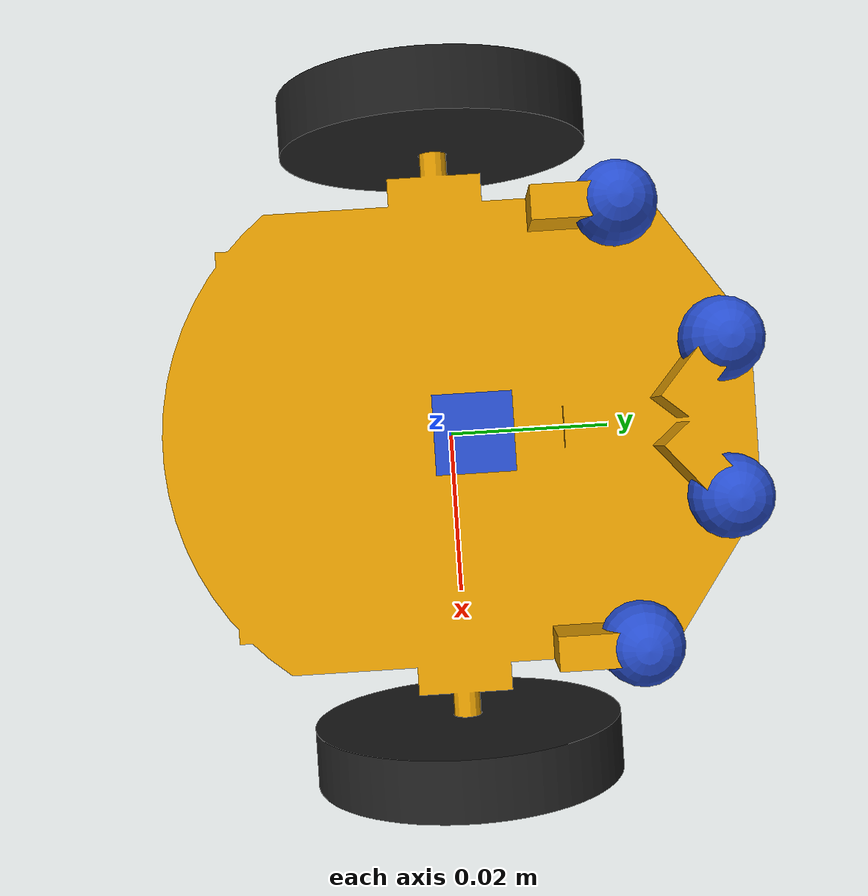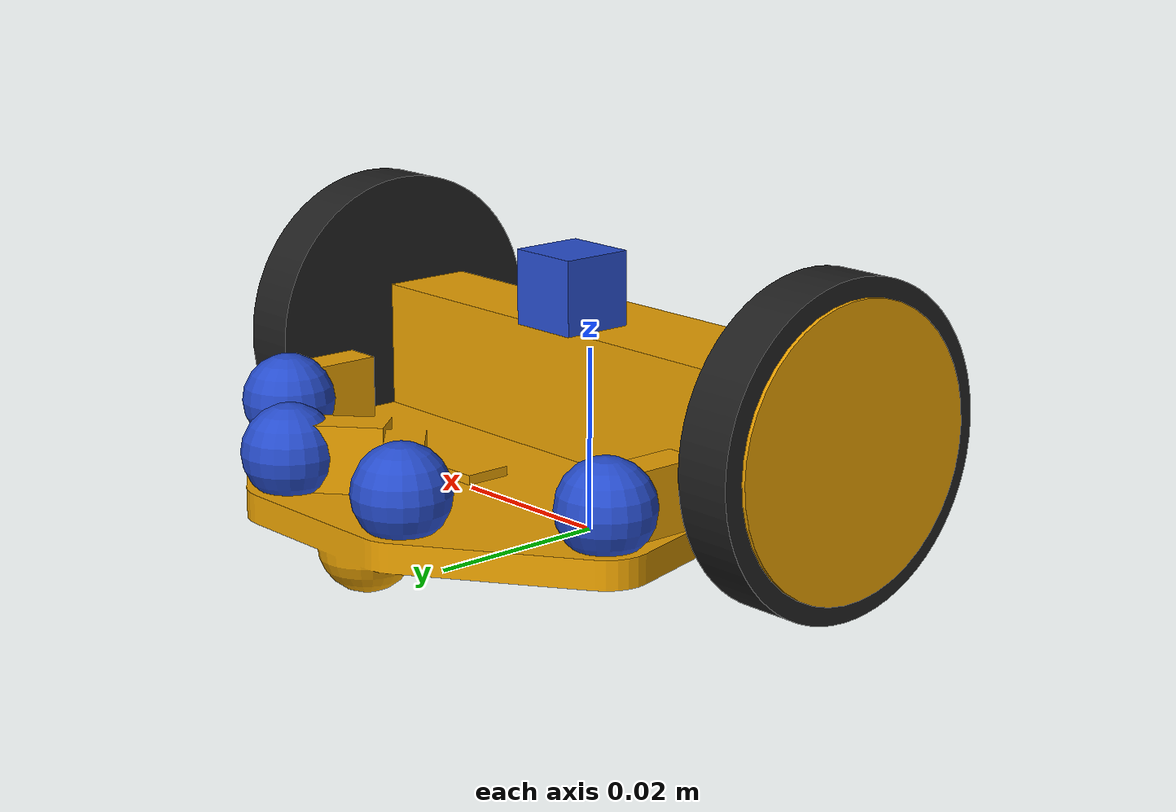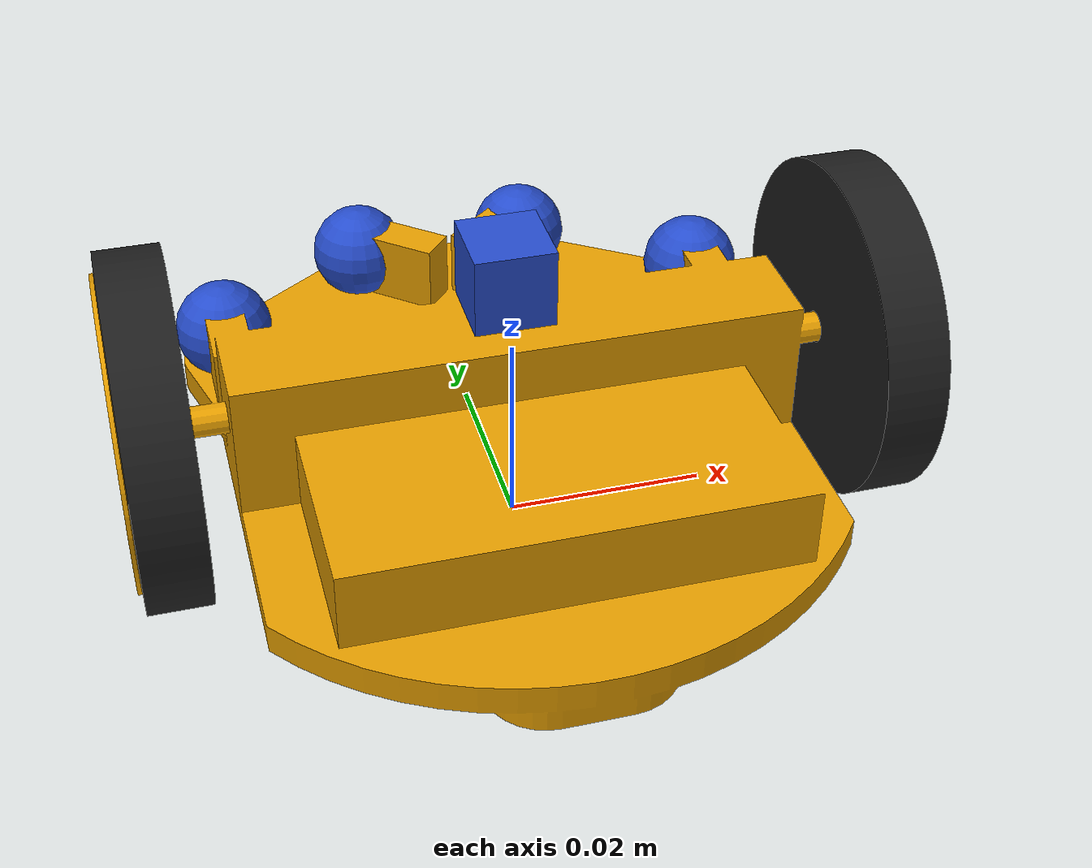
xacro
<?xml version="1.0" ?>
<robot name="mouse" xmlns:xacro="http://www.ros.org/wiki/xacro">
	<xacro:property name="wheel_sep" value="0.069"/>
	<xacro:property name="wheel_dia" value="0.034"/>
	<xacro:property name="wheel_torque" value="0.015"/>
	<xacro:property name="wheel_veloc" value="105"/>

	<link name="base_link">
		<visual>
			<geometry>
				<mesh filename="package://mouse_description/meshes/mouse_base.dae" scale="1 1 1"/>
			</geometry>
		</visual>

		<collision name="base_link_collision">
			<geometry>
				<mesh filename="package://mouse_description/meshes/mouse_base.dae" scale="1 1 1"/>
			</geometry>
		</collision>

		<inertial>
			<origin xyz="0 -0.004502 0.011265" rpy="0 0 0"/>
			<mass value="0.077"/>
			<inertia
        		ixx="1.956e-5" ixy="3.869e-18" ixz="0.0"
        		iyy="1.775e-5" iyz="2.795e-7"
        		izz="3.367e-5"/>
		</inertial>

		<gazebo reference="base_link">
			<mu1>0.1</mu1>
			<mu2>0.1</mu2>
			<kp>1000000.0</kp>
			<kd>100.0</kd>
			<minDepth>0.0001</minDepth>
			<maxVel>1.0</maxVel>
		</gazebo>
	</link>

	<!-- Actuation -->
	<link name="left_wheel">
		<visual>
			<geometry>
				<mesh filename="package://mouse_description/meshes/mouse_wheel.dae" scale="1 1 1"/>
			</geometry>
		</visual>

		<collision name="left_wheel_collision">
			<geometry>
				<mesh filename="package://mouse_description/meshes/mouse_wheel.dae" scale="1 1 1"/>
			</geometry>
		</collision>

		<inertial>
			<mass value="0.015"/>
			<inertia
        		ixx="2.196e-6" ixy="0.0" ixz="0.0"
        		iyy="1.146e-6" iyz="0.0"
        		izz="1.146e-6"/>
		</inertial>
	</link>

	<link name="right_wheel">
		<visual>
			<geometry>
				<mesh filename="package://mouse_description/meshes/mouse_wheel.dae" scale="1 1 1"/>
			</geometry>
		</visual>

		<collision name="right_wheel_collision">
			<geometry>
				<mesh filename="package://mouse_description/meshes/mouse_wheel.dae" scale="1 1 1"/>
			</geometry>
		</collision>

		<inertial>
			<mass value="0.015"/>
			<inertia
        		ixx="2.196e-6" ixy="0.0" ixz="0.0"
        		iyy="1.146e-6" iyz="0.0"
        		izz="1.146e-6"/>
		</inertial>
	</link>

	<joint name="left_mot" type="continuous">
		<parent link="base_link"/>
		<child link="left_wheel"/>
		<origin xyz="${wheel_sep/2} 0 ${wheel_dia/2}" rpy="0 0 0"/>
		<axis xyz="-1 0 0"/>
		<dynamics friction="0.01"/>
		<limit effort="${wheel_torque}" velocity="${wheel_veloc}"/>
	</joint>

	<joint name="right_mot" type="continuous">
		<parent link="base_link"/>
		<child link="right_wheel"/>
		<origin xyz="${-wheel_sep/2} 0 ${wheel_dia/2}" rpy="0 0 0"/>
		<axis xyz="-1 0 0"/>
		<dynamics friction="0.01"/>
		<limit effort="${wheel_torque}" velocity="${wheel_veloc}"/>
	</joint>

	<gazebo reference="left_wheel">
		<mu1>1.0</mu1>
		<mu2>1.0</mu2>
		<kp>1000000.0</kp>
		<kd>100.0</kd>
		<minDepth>0.0001</minDepth>
		<maxVel>1.0</maxVel>
		<material>Gazebo/Black</material>
	</gazebo>

	<gazebo reference="right_wheel">
		<mu1>1.0</mu1>
		<mu2>1.0</mu2>
		<kp>1000000.0</kp>
		<kd>100.0</kd>
		<minDepth>0.0001</minDepth>
		<maxVel>1.0</maxVel>
		<material>Gazebo/Black</material>
	</gazebo>

	<!-- Gazebo Actuation -->
	<gazebo>
		<plugin name="differential_drive_controller" filename="libgazebo_ros_diff_drive.so">
			<rosDebugLevel>0</rosDebugLevel>
			<alwaysOn>true</alwaysOn>
			<updateRate>120</updateRate>

			<leftJoint>right_mot</leftJoint>
			<rightJoint>left_mot</rightJoint>

			<wheelAcceleration>0</wheelAcceleration>
			<wheelSeparation>${wheel_sep}</wheelSeparation>
			<wheelDiameter>${wheel_dia}</wheelDiameter>
			<wheelTorque>${wheel_torque}</wheelTorque>

			<commandTopic>cmd_vel</commandTopic>
			<odometryTopic>odom</odometryTopic>

			<!-- world == perfect positioning -->
			<odometrySource>world</odometrySource>

			<odometryFrame>map</odometryFrame>
			<robotBaseFrame>base</robotBaseFrame>

			<publishTf>1</publishTf>
			<publishWheelTF>false</publishWheelTF>
			<publishOdomTF>true</publishOdomTF>
			<publishWheelJointState>false</publishWheelJointState>
		</plugin>
	</gazebo>

	<!-- Sensors -->

	<!-- Color Sensor (Camera) -->
	<link name="front_cam">
		<visual>
			<geometry>
				<box size="0.008 0.008 0.008"/>
			</geometry>
		</visual>

		<collision name="front_cam_collision">
			<geometry>
				<box size="0.008 0.008 0.008"/>
			</geometry>
		</collision>

		<inertial>
			<mass value="1e-5"/>
			<inertia
        		ixx="1e-6" ixy="0.0" ixz="0.0"
        		iyy="1e-6" iyz="0.0"
        		izz="1e-6"/>
		</inertial>
	</link>

	<joint name="front_cam_mnt" type="fixed">
		<origin xyz="0 0.0025 0.027" rpy="0 0 1.57079632679"/>
		<parent link="base_link"/>
		<child link="front_cam"/>
	</joint>

	<gazebo reference="front_cam">
		<material>Gazebo/Blue</material>

		<sensor name="front_cam" type="camera">
			<update_rate>30</update_rate>
			<camera name="front_cam">
				<horizontal_fov>2.65</horizontal_fov>
				<image>
					<width>640</width>
					<height>360</height>
					<format>R8G8B8</format>
				</image>
				<clip>
					<near>0.001</near>
					<far>0.25</far>
				</clip>
			</camera>
			<plugin name="gazebo_ros_camera" filename="libgazebo_ros_camera.so">
				<imageTopicName>image_raw</imageTopicName>
				<cameraInfoTopicName>camera_info</cameraInfoTopicName>
				<!-- incorrect TF frame -->
				<frameName>base</frameName>
			</plugin>
		</sensor>
	</gazebo>

	<!-- Bumper sensor -->
	<link name="left_bump">
		<visual>
			<geometry>
				<sphere radius="0.005"/>
			</geometry>
		</visual>

		<collision name="left_bump_collision">
			<geometry>
				<sphere radius="0.005"/>
			</geometry>
		</collision>

		<inertial>
			<mass value="1e-5"/>
			<inertia
        		ixx="1e-6" ixy="0.0" ixz="0.0"
        		iyy="1e-6" iyz="0.0"
        		izz="1e-6"/>
		</inertial>
	</link>

	<link name="right_bump">
		<visual>
			<geometry>
				<sphere radius="0.005"/>
			</geometry>
		</visual>

		<collision name="right_bump_collision">
			<geometry>
				<sphere radius="0.005"/>
			</geometry>
		</collision>

		<inertial>
			<mass value="1e-5"/>
			<inertia
        		ixx="1e-6" ixy="0.0" ixz="0.0"
        		iyy="1e-6" iyz="0.0"
        		izz="1e-6"/>
		</inertial>
	</link>

	<link name="left_front_bump">
		<visual>
			<geometry>
				<sphere radius="0.005"/>
			</geometry>
		</visual>

		<collision name="left_front_bump_collision">
			<geometry>
				<sphere radius="0.005"/>
			</geometry>
		</collision>

		<inertial>
			<mass value="1e-5"/>
			<inertia
        		ixx="1e-6" ixy="0.0" ixz="0.0"
        		iyy="1e-6" iyz="0.0"
        		izz="1e-6"/>
		</inertial>
	</link>

	<link name="right_front_bump">
		<visual>
			<geometry>
				<sphere radius="0.005"/>
			</geometry>
		</visual>

		<collision name="right_front_bump_collision">
			<geometry>
				<sphere radius="0.005"/>
			</geometry>
		</collision>

		<inertial>
			<mass value="1e-5"/>
			<inertia
        		ixx="1e-6" ixy="0.0" ixz="0.0"
        		iyy="1e-6" iyz="0.0"
        		izz="1e-6"/>
		</inertial>
	</link>

	<joint name="left_bump_mnt" type="fixed">
		<origin xyz="-0.0256 0.0207 0.013" rpy="0 0 0"/>
		<parent link="base_link"/>
		<child link="left_bump"/>
	</joint>

	<joint name="right_bump_mnt" type="fixed">
		<origin xyz="0.0256 0.0207 0.013" rpy="0 0 0"/>
		<parent link="base_link"/>
		<child link="right_bump"/>
	</joint>

	<joint name="left_front_bump_mnt" type="fixed">
		<origin xyz="-0.009152 0.032074 0.013" rpy="0 0 0"/>
		<parent link="base_link"/>
		<child link="left_front_bump"/>
	</joint>

	<joint name="right_front_bump_mnt" type="fixed">
		<origin xyz="0.009152 0.032074 0.013" rpy="0 0 0"/>
		<parent link="base_link"/>
		<child link="right_front_bump"/>
	</joint>

	<gazebo reference="left_bump_mnt">
		<preserveFixedJoint>true</preserveFixedJoint>
	</gazebo>

	<gazebo reference="right_bump_mnt">
		<preserveFixedJoint>true</preserveFixedJoint>
	</gazebo>

	<gazebo reference="left_front_bump_mnt">
		<preserveFixedJoint>true</preserveFixedJoint>
	</gazebo>

	<gazebo reference="right_front_bump_mnt">
		<preserveFixedJoint>true</preserveFixedJoint>
	</gazebo>

	<gazebo reference="left_bump">
		<mu1>1.0</mu1>
		<mu2>1.0</mu2>
		<kp>1000000.0</kp>
		<kd>100.0</kd>
		<minDepth>0.001</minDepth>
		<maxVel>1.0</maxVel>
		<material>Gazebo/Blue</material>

		<sensor name="left_bump" type="contact">
			<updateRate>30</updateRate>
			<contact>
				<collision>left_bump_collision_collision</collision>
			</contact>
			<plugin name="gazebo_ros_bumper" filename="libgazebo_ros_bumper.so">
				<bumperTopicName>bumper</bumperTopicName>
				<frameName>left_bump</frameName>
			</plugin>
		</sensor>
	</gazebo>

	<gazebo reference="right_bump">
		<mu1>1.0</mu1>
		<mu2>1.0</mu2>
		<kp>1000000.0</kp>
		<kd>100.0</kd>
		<minDepth>0.001</minDepth>
		<maxVel>1.0</maxVel>
		<material>Gazebo/Blue</material>

		<sensor name="right_bump" type="contact">
			<updateRate>30</updateRate>
			<contact>
				<collision>right_bump_collision_collision</collision>
			</contact>
			<plugin name="gazebo_ros_bumper" filename="libgazebo_ros_bumper.so">
				<bumperTopicName>bumper</bumperTopicName>
				<frameName>right_bump</frameName>
			</plugin>
		</sensor>
	</gazebo>

	<gazebo reference="left_front_bump">
		<mu1>1.0</mu1>
		<mu2>1.0</mu2>
		<kp>1000000.0</kp>
		<kd>100.0</kd>
		<minDepth>0.001</minDepth>
		<maxVel>1.0</maxVel>
		<material>Gazebo/Blue</material>

		<sensor name="left_front_bump" type="contact">
			<updateRate>30</updateRate>
			<contact>
				<collision>left_front_bump_collision_collision</collision>
			</contact>
			<plugin name="gazebo_ros_bumper" filename="libgazebo_ros_bumper.so">
				<bumperTopicName>bumper</bumperTopicName>
				<frameName>left_front_bump</frameName>
			</plugin>
		</sensor>
	</gazebo>

	<gazebo reference="right_front_bump">
		<mu1>1.0</mu1>
		<mu2>1.0</mu2>
		<kp>1000000.0</kp>
		<kd>100.0</kd>
		<minDepth>0.001</minDepth>
		<maxVel>1.0</maxVel>
		<material>Gazebo/Blue</material>

		<sensor name="right_front_bump" type="contact">
			<updateRate>30</updateRate>
			<contact>
				<collision>right_front_bump_collision_collision</collision>
			</contact>
			<plugin name="gazebo_ros_bumper" filename="libgazebo_ros_bumper.so">
				<bumperTopicName>bumper</bumperTopicName>
				<frameName>right_front_bump</frameName>
			</plugin>
		</sensor>
	</gazebo>

	<!-- TODO add compass sensor -->

	<!-- TODO add GPS sensor -->
</robot>
